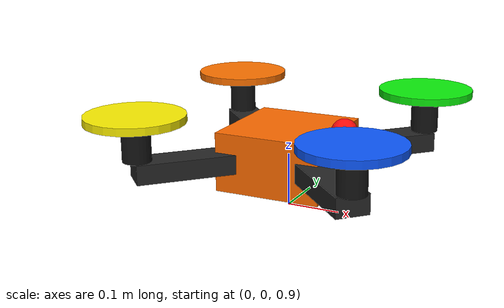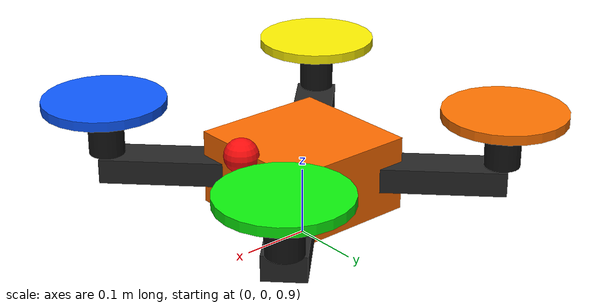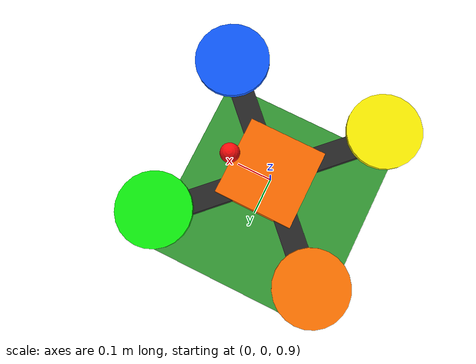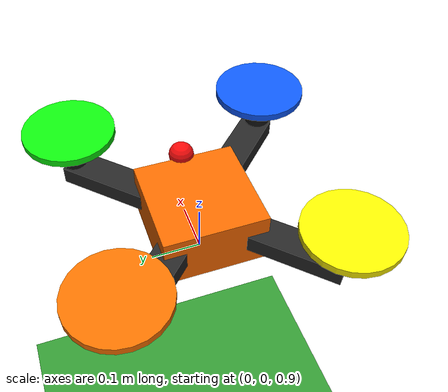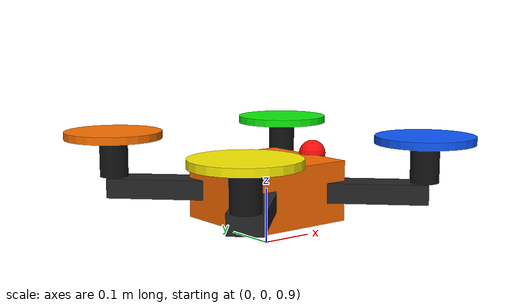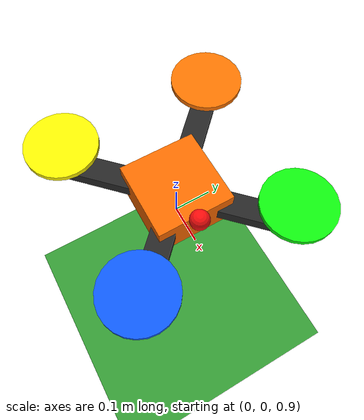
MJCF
<mujoco model="quadrotor">
    <compiler angle="radian"/>
    <option gravity="0 0 -9.81" timestep="0.002"/>

    <worldbody>
        <light pos="0 0 10" dir="0 0 -1" diffuse="0.8 0.8 0.8" specular="0.3 0.3 0.3"/>
        <light pos="5 -5 5" dir="-1 1 -1" diffuse="0.6 0.6 0.6" specular="0.1 0.1 0.1"/>
        <light pos="-5 5 3" dir="1 -1 -0.5" diffuse="0.4 0.4 0.4" specular="0.1 0.1 0.1"/>
        <geom name="floor" type="plane" size="20 20 0.1" rgba="0.2 0.6 0.2 1"/>

        <body name="drone" pos="0 0 1">
            <joint name="root" type="free"/>

            <!-- Central chassis — vivid orange -->
            <geom type="box" size="0.1 0.1 0.055" rgba="1.0 0.42 0.0 1" mass="0.3"/>

            <!-- X-frame arms — rotated 45° so each arm reaches a diagonal motor corner -->
            <geom type="box" size="0.29 0.03 0.018" euler="0 0  0.7854" rgba="0.15 0.15 0.15 1" mass="0.05"/>
            <geom type="box" size="0.29 0.03 0.018" euler="0 0 -0.7854" rgba="0.15 0.15 0.15 1" mass="0.05"/>

            <!-- Motor columns — matte black (base at arm top z=0.018, half-height=0.035 → top at z=0.088) -->
            <geom type="cylinder" size="0.026 0.035" pos=" 0.2  0.2 0.053" rgba="0.08 0.08 0.08 1" mass="0.01"/>
            <geom type="cylinder" size="0.026 0.035" pos=" 0.2 -0.2 0.053" rgba="0.08 0.08 0.08 1" mass="0.01"/>
            <geom type="cylinder" size="0.026 0.035" pos="-0.2 -0.2 0.053" rgba="0.08 0.08 0.08 1" mass="0.01"/>
            <geom type="cylinder" size="0.026 0.035" pos="-0.2  0.2 0.053" rgba="0.08 0.08 0.08 1" mass="0.01"/>

            <geom name="rotor_fl" type="cylinder" size="0.09 0.007" pos=" 0.2  0.2 0.095" rgba="0.05 0.95 0.05 1"
                  mass="0.015"/>
            <geom name="rotor_fr" type="cylinder" size="0.09 0.007" pos=" 0.2 -0.2 0.095" rgba="0.05 0.35 1.00 1"
                  mass="0.015"/>
            <geom name="rotor_br" type="cylinder" size="0.09 0.007" pos="-0.2 -0.2 0.095" rgba="1.00 0.95 0.00 1"
                  mass="0.015"/>
            <geom name="rotor_bl" type="cylinder" size="0.09 0.007" pos="-0.2  0.2 0.095" rgba="1.00 0.45 0.00 1"
                  mass="0.015"/>

            <!-- Forward marker — red -->
            <geom type="sphere" size="0.025" pos="0.11 0 0.055" rgba="1.0 0.05 0.05 1" mass="0.005"/>

            <!-- IMU at body centre -->
            <site name="imu" size="0.01"/>

            <!-- Motor thrust sites — forces applied here are in body frame -->
            <site name="motor_fl_site" pos=" 0.2  0.2 0.095"/>
            <site name="motor_fr_site" pos=" 0.2 -0.2 0.095"/>
            <site name="motor_br_site" pos="-0.2 -0.2 0.095"/>
            <site name="motor_bl_site" pos="-0.2  0.2 0.095"/>
        </body>
    </worldbody>

    <actuator>
        <motor name="motor_fl" site="motor_fl_site" gear="0 0 1 0 0  0.01" ctrlrange="0 4"/>
        <motor name="motor_fr" site="motor_fr_site" gear="0 0 1 0 0 -0.01" ctrlrange="0 4"/>
        <motor name="motor_br" site="motor_br_site" gear="0 0 1 0 0  0.01" ctrlrange="0 4"/>
        <motor name="motor_bl" site="motor_bl_site" gear="0 0 1 0 0 -0.01" ctrlrange="0 4"/>
    </actuator>

    <sensor>
        <accelerometer name="accel" site="imu"/>
        <gyro name="gyro" site="imu"/>
        <framepos name="pos" objtype="site" objname="imu"/>
        <framequat name="quat" objtype="site" objname="imu"/>
        <framelinvel name="linvel" objtype="site" objname="imu"/>
        <frameangvel name="angvel" objtype="site" objname="imu"/>
    </sensor>
</mujoco>
